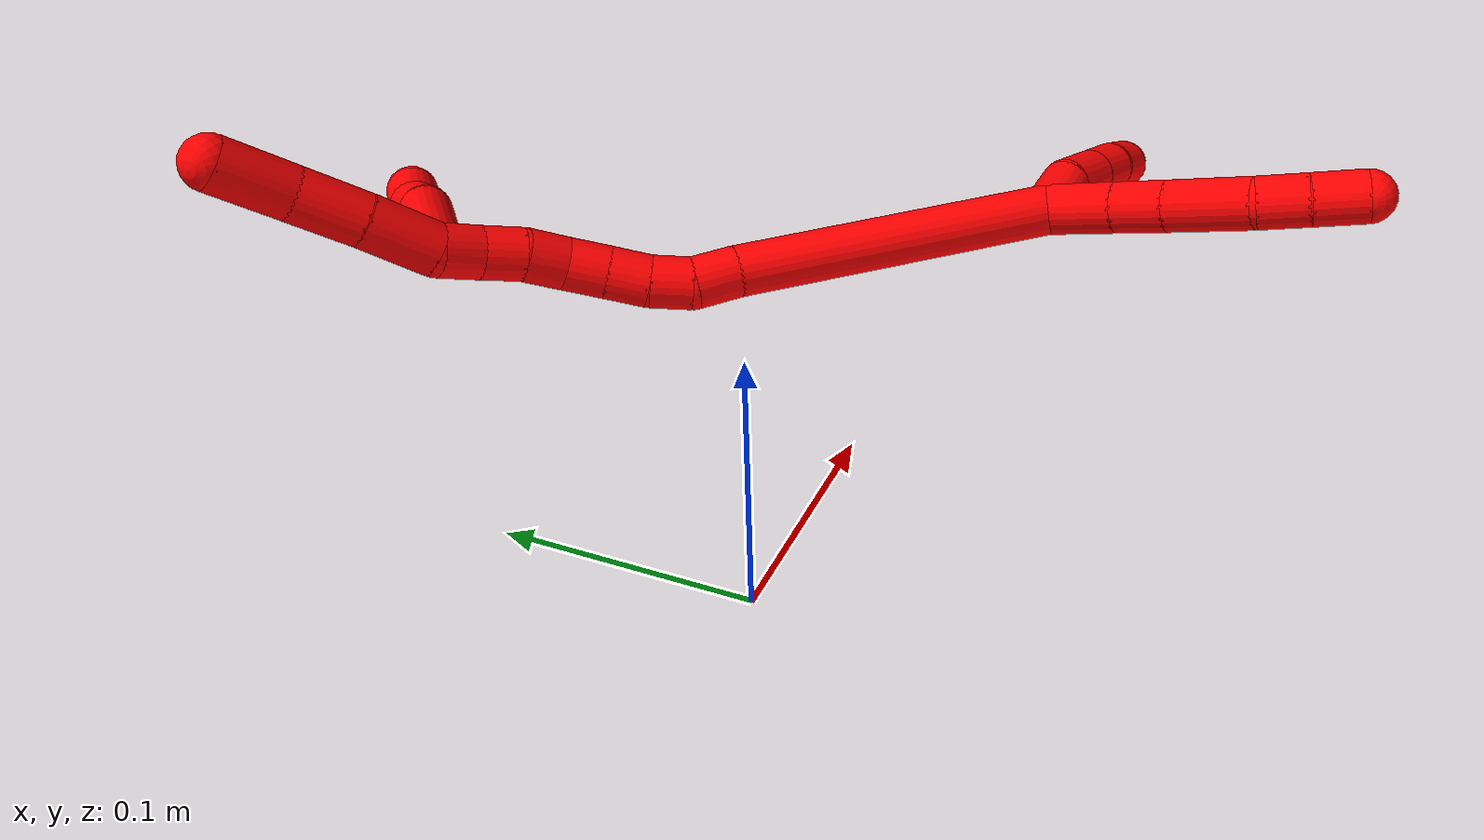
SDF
<sdf version="1.7">
 <world name="default">
  <model name="2">
   <static>0</static>
   <link name="2">
    <collision name="collision-cylinder-e_1_2_8">
     <pose>0.006034 -0.016121 -0.002976 1.75336 0.352666 0.421816</pose>
     <geometry><cylinder><radius>0.0125</radius><length>0.034937</length></cylinder></geometry>
     <surface>
      <friction><ode><mu>1.16</mu><mu2>1.16</mu2><slip1>0</slip1><slip2>0</slip2></ode></friction>
      <contact><ode><kp>1e+06</kp><kd>1</kd><max_vel>0</max_vel><min_depth>0.001</min_depth></ode></contact>
     </surface>
    </collision>
    <visual name="visual-cylinder-e_1_2_8">
     <pose>0.006034 -0.016121 -0.002976 1.75336 0.352666 0.421816</pose>
     <geometry><cylinder><radius>0.0125</radius><length>0.034937</length></cylinder></geometry>
     <material><ambient>1 0 0 1</ambient></material>
    </visual>
    <collision name="collision-cylinder-e_2_8_9">
     <pose>0.016473 -0.043834 -0.008078 1.75215 0.357719 0.427292</pose>
     <geometry><cylinder><radius>0.0125</radius><length>0.025163</length></cylinder></geometry>
     <surface>
      <friction><ode><mu>1.16</mu><mu2>1.16</mu2><slip1>0</slip1><slip2>0</slip2></ode></friction>
      <contact><ode><kp>1e+06</kp><kd>1</kd><max_vel>0</max_vel><min_depth>0.001</min_depth></ode></contact>
     </surface>
    </collision>
    <visual name="visual-cylinder-e_2_8_9">
     <pose>0.016473 -0.043834 -0.008078 1.75215 0.357719 0.427292</pose>
     <geometry><cylinder><radius>0.0125</radius><length>0.025163</length></cylinder></geometry>
     <material><ambient>1 0 0 1</ambient></material>
    </visual>
    <collision name="collision-cylinder-e_3_9_10">
     <pose>0.027869 -0.074534 -0.01392 1.76288 0.344813 0.416405</pose>
     <geometry><cylinder><radius>0.0125</radius><length>0.041366</length></cylinder></geometry>
     <surface>
      <friction><ode><mu>1.16</mu><mu2>1.16</mu2><slip1>0</slip1><slip2>0</slip2></ode></friction>
      <contact><ode><kp>1e+06</kp><kd>1</kd><max_vel>0</max_vel><min_depth>0.001</min_depth></ode></contact>
     </surface>
    </collision>
    <visual name="visual-cylinder-e_3_9_10">
     <pose>0.027869 -0.074534 -0.01392 1.76288 0.344813 0.416405</pose>
     <geometry><cylinder><radius>0.0125</radius><length>0.041366</length></cylinder></geometry>
     <material><ambient>1 0 0 1</ambient></material>
    </visual>
    <collision name="collision-cylinder-e_4_10_11">
     <pose>0.03934 -0.104548 -0.016894 1.50285 0.38886 0.363877</pose>
     <geometry><cylinder><radius>0.0125</radius><length>0.023628</length></cylinder></geometry>
     <surface>
      <friction><ode><mu>1.16</mu><mu2>1.16</mu2><slip1>0</slip1><slip2>0</slip2></ode></friction>
      <contact><ode><kp>1e+06</kp><kd>1</kd><max_vel>0</max_vel><min_depth>0.001</min_depth></ode></contact>
     </surface>
    </collision>
    <visual name="visual-cylinder-e_4_10_11">
     <pose>0.03934 -0.104548 -0.016894 1.50285 0.38886 0.363877</pose>
     <geometry><cylinder><radius>0.0125</radius><length>0.023628</length></cylinder></geometry>
     <material><ambient>1 0 0 1</ambient></material>
    </visual>
    <collision name="collision-cylinder-e_5_11_6">
     <pose>0.048658 -0.126818 -0.014557 1.43137 0.399106 0.348129</pose>
     <geometry><cylinder><radius>0.0125</radius><length>0.024905</length></cylinder></geometry>
     <surface>
      <friction><ode><mu>1.16</mu><mu2>1.16</mu2><slip1>0</slip1><slip2>0</slip2></ode></friction>
      <contact><ode><kp>1e+06</kp><kd>1</kd><max_vel>0</max_vel><min_depth>0.001</min_depth></ode></contact>
     </surface>
    </collision>
    <visual name="visual-cylinder-e_5_11_6">
     <pose>0.048658 -0.126818 -0.014557 1.43137 0.399106 0.348129</pose>
     <geometry><cylinder><radius>0.0125</radius><length>0.024905</length></cylinder></geometry>
     <material><ambient>1 0 0 1</ambient></material>
    </visual>
    <collision name="collision-cylinder-e_1_2_12">
     <pose>-0.002024 -0.002992 0.013701 0.214989 -0.143334 -0.015493</pose>
     <geometry><cylinder><radius>0.0125</radius><length>0.028339</length></cylinder></geometry>
     <surface>
      <friction><ode><mu>1.16</mu><mu2>1.16</mu2><slip1>0</slip1><slip2>0</slip2></ode></friction>
      <contact><ode><kp>1e+06</kp><kd>1</kd><max_vel>0</max_vel><min_depth>0.001</min_depth></ode></contact>
     </surface>
    </collision>
    <visual name="visual-cylinder-e_1_2_12">
     <pose>-0.002024 -0.002992 0.013701 0.214989 -0.143334 -0.015493</pose>
     <geometry><cylinder><radius>0.0125</radius><length>0.028339</length></cylinder></geometry>
     <material><ambient>1 0 0 1</ambient></material>
    </visual>
    <collision name="collision-cylinder-e_2_12_13">
     <pose>-0.001557 -0.009107 0.041263 0.221607 0.173596 0.019362</pose>
     <geometry><cylinder><radius>0.0125</radius><length>0.028849</length></cylinder></geometry>
     <surface>
      <friction><ode><mu>1.16</mu><mu2>1.16</mu2><slip1>0</slip1><slip2>0</slip2></ode></friction>
      <contact><ode><kp>1e+06</kp><kd>1</kd><max_vel>0</max_vel><min_depth>0.001</min_depth></ode></contact>
     </surface>
    </collision>
    <visual name="visual-cylinder-e_2_12_13">
     <pose>-0.001557 -0.009107 0.041263 0.221607 0.173596 0.019362</pose>
     <geometry><cylinder><radius>0.0125</radius><length>0.028849</length></cylinder></geometry>
     <material><ambient>1 0 0 1</ambient></material>
    </visual>
    <collision name="collision-cylinder-e_3_13_14">
     <pose>0.002838 -0.014872 0.065642 0.246103 0.173687 0.021534</pose>
     <geometry><cylinder><radius>0.0125</radius><length>0.022023</length></cylinder></geometry>
     <surface>
      <friction><ode><mu>1.16</mu><mu2>1.16</mu2><slip1>0</slip1><slip2>0</slip2></ode></friction>
      <contact><ode><kp>1e+06</kp><kd>1</kd><max_vel>0</max_vel><min_depth>0.001</min_depth></ode></contact>
     </surface>
    </collision>
    <visual name="visual-cylinder-e_3_13_14">
     <pose>0.002838 -0.014872 0.065642 0.246103 0.173687 0.021534</pose>
     <geometry><cylinder><radius>0.0125</radius><length>0.022023</length></cylinder></geometry>
     <material><ambient>1 0 0 1</ambient></material>
    </visual>
    <collision name="collision-cylinder-e_4_14_5">
     <pose>0.00714 -0.018378 0.086238 0.085555 0.232959 0.010017</pose>
     <geometry><cylinder><radius>0.0125</radius><length>0.020789</length></cylinder></geometry>
     <surface>
      <friction><ode><mu>1.16</mu><mu2>1.16</mu2><slip1>0</slip1><slip2>0</slip2></ode></friction>
      <contact><ode><kp>1e+06</kp><kd>1</kd><max_vel>0</max_vel><min_depth>0.001</min_depth></ode></contact>
     </surface>
    </collision>
    <visual name="visual-cylinder-e_4_14_5">
     <pose>0.00714 -0.018378 0.086238 0.085555 0.232959 0.010017</pose>
     <geometry><cylinder><radius>0.0125</radius><length>0.020789</length></cylinder></geometry>
     <material><ambient>1 0 0 1</ambient></material>
    </visual>
    <collision name="collision-cylinder-e_1_2_15">
     <pose>-0.024726 0.060696 -0.043906 -2.19703 -0.318812 0.60981</pose>
     <geometry><cylinder><radius>0.0125</radius><length>0.157774</length></cylinder></geometry>
     <surface>
      <friction><ode><mu>1.16</mu><mu2>1.16</mu2><slip1>0</slip1><slip2>0</slip2></ode></friction>
      <contact><ode><kp>1e+06</kp><kd>1</kd><max_vel>0</max_vel><min_depth>0.001</min_depth></ode></contact>
     </surface>
    </collision>
    <visual name="visual-cylinder-e_1_2_15">
     <pose>-0.024726 0.060696 -0.043906 -2.19703 -0.318812 0.60981</pose>
     <geometry><cylinder><radius>0.0125</radius><length>0.157774</length></cylinder></geometry>
     <material><ambient>1 0 0 1</ambient></material>
    </visual>
    <collision name="collision-cylinder-e_2_15_16">
     <pose>-0.052208 0.129433 -0.09483 -2.2885 -0.252668 0.545057</pose>
     <geometry><cylinder><radius>0.0125</radius><length>0.022045</length></cylinder></geometry>
     <surface>
      <friction><ode><mu>1.16</mu><mu2>1.16</mu2><slip1>0</slip1><slip2>0</slip2></ode></friction>
      <contact><ode><kp>1e+06</kp><kd>1</kd><max_vel>0</max_vel><min_depth>0.001</min_depth></ode></contact>
     </surface>
    </collision>
    <visual name="visual-cylinder-e_2_15_16">
     <pose>-0.052208 0.129433 -0.09483 -2.2885 -0.252668 0.545057</pose>
     <geometry><cylinder><radius>0.0125</radius><length>0.022045</length></cylinder></geometry>
     <material><ambient>1 0 0 1</ambient></material>
    </visual>
    <collision name="collision-cylinder-e_3_16_17">
     <pose>-0.060351 0.144732 -0.106312 -2.12199 -0.563766 0.955832</pose>
     <geometry><cylinder><radius>0.0125</radius><length>0.020164</length></cylinder></geometry>
     <surface>
      <friction><ode><mu>1.16</mu><mu2>1.16</mu2><slip1>0</slip1><slip2>0</slip2></ode></friction>
      <contact><ode><kp>1e+06</kp><kd>1</kd><max_vel>0</max_vel><min_depth>0.001</min_depth></ode></contact>
     </surface>
    </collision>
    <visual name="visual-cylinder-e_3_16_17">
     <pose>-0.060351 0.144732 -0.106312 -2.12199 -0.563766 0.955832</pose>
     <geometry><cylinder><radius>0.0125</radius><length>0.020164</length></cylinder></geometry>
     <material><ambient>1 0 0 1</ambient></material>
    </visual>
    <collision name="collision-cylinder-e_4_17_18">
     <pose>-0.07238 0.158332 -0.114753 -2.13121 -0.725702 1.20317</pose>
     <geometry><cylinder><radius>0.0125</radius><length>0.020014</length></cylinder></geometry>
     <surface>
      <friction><ode><mu>1.16</mu><mu2>1.16</mu2><slip1>0</slip1><slip2>0</slip2></ode></friction>
      <contact><ode><kp>1e+06</kp><kd>1</kd><max_vel>0</max_vel><min_depth>0.001</min_depth></ode></contact>
     </surface>
    </collision>
    <visual name="visual-cylinder-e_4_17_18">
     <pose>-0.07238 0.158332 -0.114753 -2.13121 -0.725702 1.20317</pose>
     <geometry><cylinder><radius>0.0125</radius><length>0.020014</length></cylinder></geometry>
     <material><ambient>1 0 0 1</ambient></material>
    </visual>
    <collision name="collision-cylinder-e_5_18_19">
     <pose>-0.085602 0.170714 -0.123228 -2.21052 -0.718204 1.28344</pose>
     <geometry><cylinder><radius>0.0125</radius><length>0.020001</length></cylinder></geometry>
     <surface>
      <friction><ode><mu>1.16</mu><mu2>1.16</mu2><slip1>0</slip1><slip2>0</slip2></ode></friction>
      <contact><ode><kp>1e+06</kp><kd>1</kd><max_vel>0</max_vel><min_depth>0.001</min_depth></ode></contact>
     </surface>
    </collision>
    <visual name="visual-cylinder-e_5_18_19">
     <pose>-0.085602 0.170714 -0.123228 -2.21052 -0.718204 1.28344</pose>
     <geometry><cylinder><radius>0.0125</radius><length>0.020001</length></cylinder></geometry>
     <material><ambient>1 0 0 1</ambient></material>
    </visual>
    <collision name="collision-cylinder-e_6_19_20">
     <pose>-0.0986 0.180905 -0.134173 -2.56994 -0.696758 1.78101</pose>
     <geometry><cylinder><radius>0.0125</radius><length>0.02</length></cylinder></geometry>
     <surface>
      <friction><ode><mu>1.16</mu><mu2>1.16</mu2><slip1>0</slip1><slip2>0</slip2></ode></friction>
      <contact><ode><kp>1e+06</kp><kd>1</kd><max_vel>0</max_vel><min_depth>0.001</min_depth></ode></contact>
     </surface>
    </collision>
    <visual name="visual-cylinder-e_6_19_20">
     <pose>-0.0986 0.180905 -0.134173 -2.56994 -0.696758 1.78101</pose>
     <geometry><cylinder><radius>0.0125</radius><length>0.02</length></cylinder></geometry>
     <material><ambient>1 0 0 1</ambient></material>
    </visual>
    <collision name="collision-cylinder-e_7_20_21">
     <pose>-0.11015 0.190473 -0.147279 -2.45826 -0.538957 1.32072</pose>
     <geometry><cylinder><radius>0.0125</radius><length>0.020001</length></cylinder></geometry>
     <surface>
      <friction><ode><mu>1.16</mu><mu2>1.16</mu2><slip1>0</slip1><slip2>0</slip2></ode></friction>
      <contact><ode><kp>1e+06</kp><kd>1</kd><max_vel>0</max_vel><min_depth>0.001</min_depth></ode></contact>
     </surface>
    </collision>
    <visual name="visual-cylinder-e_7_20_21">
     <pose>-0.11015 0.190473 -0.147279 -2.45826 -0.538957 1.32072</pose>
     <geometry><cylinder><radius>0.0125</radius><length>0.020001</length></cylinder></geometry>
     <material><ambient>1 0 0 1</ambient></material>
    </visual>
    <collision name="collision-cylinder-e_8_21_1">
     <pose>-0.120194 0.199597 -0.161819 -2.70235 -0.51332 1.73198</pose>
     <geometry><cylinder><radius>0.0125</radius><length>0.02</length></cylinder></geometry>
     <surface>
      <friction><ode><mu>1.16</mu><mu2>1.16</mu2><slip1>0</slip1><slip2>0</slip2></ode></friction>
      <contact><ode><kp>1e+06</kp><kd>1</kd><max_vel>0</max_vel><min_depth>0.001</min_depth></ode></contact>
     </surface>
    </collision>
    <visual name="visual-cylinder-e_8_21_1">
     <pose>-0.120194 0.199597 -0.161819 -2.70235 -0.51332 1.73198</pose>
     <geometry><cylinder><radius>0.0125</radius><length>0.02</length></cylinder></geometry>
     <material><ambient>1 0 0 1</ambient></material>
    </visual>
    <collision name="collision-cylinder-e_1_1_22">
     <pose>-0.1379 0.208085 -0.179633 -2.69262 -0.859725 2.21741</pose>
     <geometry><cylinder><radius>0.0125</radius><length>0.033775</length></cylinder></geometry>
     <surface>
      <friction><ode><mu>1.16</mu><mu2>1.16</mu2><slip1>0</slip1><slip2>0</slip2></ode></friction>
      <contact><ode><kp>1e+06</kp><kd>1</kd><max_vel>0</max_vel><min_depth>0.001</min_depth></ode></contact>
     </surface>
    </collision>
    <visual name="visual-cylinder-e_1_1_22">
     <pose>-0.1379 0.208085 -0.179633 -2.69262 -0.859725 2.21741</pose>
     <geometry><cylinder><radius>0.0125</radius><length>0.033775</length></cylinder></geometry>
     <material><ambient>1 0 0 1</ambient></material>
    </visual>
    <collision name="collision-cylinder-e_2_22_23">
     <pose>-0.162441 0.218218 -0.19862 -2.60816 -0.840439 2.04397</pose>
     <geometry><cylinder><radius>0.0125</radius><length>0.031535</length></cylinder></geometry>
     <surface>
      <friction><ode><mu>1.16</mu><mu2>1.16</mu2><slip1>0</slip1><slip2>0</slip2></ode></friction>
      <contact><ode><kp>1e+06</kp><kd>1</kd><max_vel>0</max_vel><min_depth>0.001</min_depth></ode></contact>
     </surface>
    </collision>
    <visual name="visual-cylinder-e_2_22_23">
     <pose>-0.162441 0.218218 -0.19862 -2.60816 -0.840439 2.04397</pose>
     <geometry><cylinder><radius>0.0125</radius><length>0.031535</length></cylinder></geometry>
     <material><ambient>1 0 0 1</ambient></material>
    </visual>
    <collision name="collision-cylinder-e_3_23_4">
     <pose>-0.186502 0.227691 -0.219173 -2.79716 -0.789593 2.35068</pose>
     <geometry><cylinder><radius>0.0125</radius><length>0.03469</length></cylinder></geometry>
     <surface>
      <friction><ode><mu>1.16</mu><mu2>1.16</mu2><slip1>0</slip1><slip2>0</slip2></ode></friction>
      <contact><ode><kp>1e+06</kp><kd>1</kd><max_vel>0</max_vel><min_depth>0.001</min_depth></ode></contact>
     </surface>
    </collision>
    <visual name="visual-cylinder-e_3_23_4">
     <pose>-0.186502 0.227691 -0.219173 -2.79716 -0.789593 2.35068</pose>
     <geometry><cylinder><radius>0.0125</radius><length>0.03469</length></cylinder></geometry>
     <material><ambient>1 0 0 1</ambient></material>
    </visual>
    <collision name="collision-cylinder-e_1_1_24">
     <pose>-0.135119 0.217854 -0.147626 -0.582781 -0.362023 0.109672</pose>
     <geometry><cylinder><radius>0.0125</radius><length>0.05655</length></cylinder></geometry>
     <surface>
      <friction><ode><mu>1.16</mu><mu2>1.16</mu2><slip1>0</slip1><slip2>0</slip2></ode></friction>
      <contact><ode><kp>1e+06</kp><kd>1</kd><max_vel>0</max_vel><min_depth>0.001</min_depth></ode></contact>
     </surface>
    </collision>
    <visual name="visual-cylinder-e_1_1_24">
     <pose>-0.135119 0.217854 -0.147626 -0.582781 -0.362023 0.109672</pose>
     <geometry><cylinder><radius>0.0125</radius><length>0.05655</length></cylinder></geometry>
     <material><ambient>1 0 0 1</ambient></material>
    </visual>
    <collision name="collision-cylinder-e_2_24_25">
     <pose>-0.147893 0.240579 -0.117803 -0.812205 -0.240387 0.103775</pose>
     <geometry><cylinder><radius>0.0125</radius><length>0.023186</length></cylinder></geometry>
     <surface>
      <friction><ode><mu>1.16</mu><mu2>1.16</mu2><slip1>0</slip1><slip2>0</slip2></ode></friction>
      <contact><ode><kp>1e+06</kp><kd>1</kd><max_vel>0</max_vel><min_depth>0.001</min_depth></ode></contact>
     </surface>
    </collision>
    <visual name="visual-cylinder-e_2_24_25">
     <pose>-0.147893 0.240579 -0.117803 -0.812205 -0.240387 0.103775</pose>
     <geometry><cylinder><radius>0.0125</radius><length>0.023186</length></cylinder></geometry>
     <material><ambient>1 0 0 1</ambient></material>
    </visual>
    <collision name="collision-cylinder-e_3_25_3">
     <pose>-0.154801 0.253508 -0.102132 -0.540584 -0.421795 0.118493</pose>
     <geometry><cylinder><radius>0.0125</radius><length>0.020264</length></cylinder></geometry>
     <surface>
      <friction><ode><mu>1.16</mu><mu2>1.16</mu2><slip1>0</slip1><slip2>0</slip2></ode></friction>
      <contact><ode><kp>1e+06</kp><kd>1</kd><max_vel>0</max_vel><min_depth>0.001</min_depth></ode></contact>
     </surface>
    </collision>
    <visual name="visual-cylinder-e_3_25_3">
     <pose>-0.154801 0.253508 -0.102132 -0.540584 -0.421795 0.118493</pose>
     <geometry><cylinder><radius>0.0125</radius><length>0.020264</length></cylinder></geometry>
     <material><ambient>1 0 0 1</ambient></material>
    </visual>
    <collision name="collision-sphere-3">
     <pose>-0.158949 0.258266 -0.094206 0 -0 0</pose>
     <geometry><sphere><radius>0.0125</radius></sphere></geometry>
     <surface>
      <friction><ode><mu>1.16</mu><mu2>1.16</mu2><slip1>0</slip1><slip2>0</slip2></ode></friction>
      <contact><ode><kp>1e+06</kp><kd>1</kd><max_vel>0</max_vel><min_depth>0.001</min_depth></ode></contact>
     </surface>
    </collision>
    <visual name="visual-sphere-3">
     <pose>-0.158949 0.258266 -0.094206 0 -0 0</pose>
     <geometry><sphere><radius>0.0125</radius></sphere></geometry>
     <material><ambient>1 0 0 1</ambient></material>
    </visual>
    <collision name="collision-sphere-25">
     <pose>-0.150653 0.248751 -0.110058 0 -0 0</pose>
     <geometry><sphere><radius>0.0125</radius></sphere></geometry>
     <surface>
      <friction><ode><mu>1.16</mu><mu2>1.16</mu2><slip1>0</slip1><slip2>0</slip2></ode></friction>
      <contact><ode><kp>1e+06</kp><kd>1</kd><max_vel>0</max_vel><min_depth>0.001</min_depth></ode></contact>
     </surface>
    </collision>
    <visual name="visual-sphere-25">
     <pose>-0.150653 0.248751 -0.110058 0 -0 0</pose>
     <geometry><sphere><radius>0.0125</radius></sphere></geometry>
     <material><ambient>1 0 0 1</ambient></material>
    </visual>
    <collision name="collision-sphere-24">
     <pose>-0.145133 0.232406 -0.125549 0 -0 0</pose>
     <geometry><sphere><radius>0.0125</radius></sphere></geometry>
     <surface>
      <friction><ode><mu>1.16</mu><mu2>1.16</mu2><slip1>0</slip1><slip2>0</slip2></ode></friction>
      <contact><ode><kp>1e+06</kp><kd>1</kd><max_vel>0</max_vel><min_depth>0.001</min_depth></ode></contact>
     </surface>
    </collision>
    <visual name="visual-sphere-24">
     <pose>-0.145133 0.232406 -0.125549 0 -0 0</pose>
     <geometry><sphere><radius>0.0125</radius></sphere></geometry>
     <material><ambient>1 0 0 1</ambient></material>
    </visual>
    <collision name="collision-sphere-4">
     <pose>-0.198818 0.231815 -0.230669 0 -0 0</pose>
     <geometry><sphere><radius>0.0125</radius></sphere></geometry>
     <surface>
      <friction><ode><mu>1.16</mu><mu2>1.16</mu2><slip1>0</slip1><slip2>0</slip2></ode></friction>
      <contact><ode><kp>1e+06</kp><kd>1</kd><max_vel>0</max_vel><min_depth>0.001</min_depth></ode></contact>
     </surface>
    </collision>
    <visual name="visual-sphere-4">
     <pose>-0.198818 0.231815 -0.230669 0 -0 0</pose>
     <geometry><sphere><radius>0.0125</radius></sphere></geometry>
     <material><ambient>1 0 0 1</ambient></material>
    </visual>
    <collision name="collision-sphere-23">
     <pose>-0.174186 0.223567 -0.207678 0 -0 0</pose>
     <geometry><sphere><radius>0.0125</radius></sphere></geometry>
     <surface>
      <friction><ode><mu>1.16</mu><mu2>1.16</mu2><slip1>0</slip1><slip2>0</slip2></ode></friction>
      <contact><ode><kp>1e+06</kp><kd>1</kd><max_vel>0</max_vel><min_depth>0.001</min_depth></ode></contact>
     </surface>
    </collision>
    <visual name="visual-sphere-23">
     <pose>-0.174186 0.223567 -0.207678 0 -0 0</pose>
     <geometry><sphere><radius>0.0125</radius></sphere></geometry>
     <material><ambient>1 0 0 1</ambient></material>
    </visual>
    <collision name="collision-sphere-22">
     <pose>-0.150695 0.212869 -0.189563 0 -0 0</pose>
     <geometry><sphere><radius>0.0125</radius></sphere></geometry>
     <surface>
      <friction><ode><mu>1.16</mu><mu2>1.16</mu2><slip1>0</slip1><slip2>0</slip2></ode></friction>
      <contact><ode><kp>1e+06</kp><kd>1</kd><max_vel>0</max_vel><min_depth>0.001</min_depth></ode></contact>
     </surface>
    </collision>
    <visual name="visual-sphere-22">
     <pose>-0.150695 0.212869 -0.189563 0 -0 0</pose>
     <geometry><sphere><radius>0.0125</radius></sphere></geometry>
     <material><ambient>1 0 0 1</ambient></material>
    </visual>
    <collision name="collision-sphere-1">
     <pose>-0.125105 0.203302 -0.169704 0 -0 0</pose>
     <geometry><sphere><radius>0.0125</radius></sphere></geometry>
     <surface>
      <friction><ode><mu>1.16</mu><mu2>1.16</mu2><slip1>0</slip1><slip2>0</slip2></ode></friction>
      <contact><ode><kp>1e+06</kp><kd>1</kd><max_vel>0</max_vel><min_depth>0.001</min_depth></ode></contact>
     </surface>
    </collision>
    <visual name="visual-sphere-1">
     <pose>-0.125105 0.203302 -0.169704 0 -0 0</pose>
     <geometry><sphere><radius>0.0125</radius></sphere></geometry>
     <material><ambient>1 0 0 1</ambient></material>
    </visual>
    <collision name="collision-sphere-21">
     <pose>-0.115283 0.195892 -0.153935 0 -0 0</pose>
     <geometry><sphere><radius>0.0125</radius></sphere></geometry>
     <surface>
      <friction><ode><mu>1.16</mu><mu2>1.16</mu2><slip1>0</slip1><slip2>0</slip2></ode></friction>
      <contact><ode><kp>1e+06</kp><kd>1</kd><max_vel>0</max_vel><min_depth>0.001</min_depth></ode></contact>
     </surface>
    </collision>
    <visual name="visual-sphere-21">
     <pose>-0.115283 0.195892 -0.153935 0 -0 0</pose>
     <geometry><sphere><radius>0.0125</radius></sphere></geometry>
     <material><ambient>1 0 0 1</ambient></material>
    </visual>
    <collision name="collision-sphere-6">
     <pose>0.053497 -0.13818 -0.012963 0 -0 0</pose>
     <geometry><sphere><radius>0.0125</radius></sphere></geometry>
     <surface>
      <friction><ode><mu>1.16</mu><mu2>1.16</mu2><slip1>0</slip1><slip2>0</slip2></ode></friction>
      <contact><ode><kp>1e+06</kp><kd>1</kd><max_vel>0</max_vel><min_depth>0.001</min_depth></ode></contact>
     </surface>
    </collision>
    <visual name="visual-sphere-6">
     <pose>0.053497 -0.13818 -0.012963 0 -0 0</pose>
     <geometry><sphere><radius>0.0125</radius></sphere></geometry>
     <material><ambient>1 0 0 1</ambient></material>
    </visual>
    <collision name="collision-sphere-11">
     <pose>0.043819 -0.115455 -0.016152 0 -0 0</pose>
     <geometry><sphere><radius>0.0125</radius></sphere></geometry>
     <surface>
      <friction><ode><mu>1.16</mu><mu2>1.16</mu2><slip1>0</slip1><slip2>0</slip2></ode></friction>
      <contact><ode><kp>1e+06</kp><kd>1</kd><max_vel>0</max_vel><min_depth>0.001</min_depth></ode></contact>
     </surface>
    </collision>
    <visual name="visual-sphere-11">
     <pose>0.043819 -0.115455 -0.016152 0 -0 0</pose>
     <geometry><sphere><radius>0.0125</radius></sphere></geometry>
     <material><ambient>1 0 0 1</ambient></material>
    </visual>
    <collision name="collision-sphere-10">
     <pose>0.034861 -0.093642 -0.017636 0 -0 0</pose>
     <geometry><sphere><radius>0.0125</radius></sphere></geometry>
     <surface>
      <friction><ode><mu>1.16</mu><mu2>1.16</mu2><slip1>0</slip1><slip2>0</slip2></ode></friction>
      <contact><ode><kp>1e+06</kp><kd>1</kd><max_vel>0</max_vel><min_depth>0.001</min_depth></ode></contact>
     </surface>
    </collision>
    <visual name="visual-sphere-10">
     <pose>0.034861 -0.093642 -0.017636 0 -0 0</pose>
     <geometry><sphere><radius>0.0125</radius></sphere></geometry>
     <material><ambient>1 0 0 1</ambient></material>
    </visual>
    <collision name="collision-sphere-9">
     <pose>0.020878 -0.055426 -0.010204 0 -0 0</pose>
     <geometry><sphere><radius>0.0125</radius></sphere></geometry>
     <surface>
      <friction><ode><mu>1.16</mu><mu2>1.16</mu2><slip1>0</slip1><slip2>0</slip2></ode></friction>
      <contact><ode><kp>1e+06</kp><kd>1</kd><max_vel>0</max_vel><min_depth>0.001</min_depth></ode></contact>
     </surface>
    </collision>
    <visual name="visual-sphere-9">
     <pose>0.020878 -0.055426 -0.010204 0 -0 0</pose>
     <geometry><sphere><radius>0.0125</radius></sphere></geometry>
     <material><ambient>1 0 0 1</ambient></material>
    </visual>
    <collision name="collision-sphere-2">
     <geometry><sphere><radius>0.0125</radius></sphere></geometry>
     <surface>
      <friction><ode><mu>1.16</mu><mu2>1.16</mu2><slip1>0</slip1><slip2>0</slip2></ode></friction>
      <contact><ode><kp>1e+06</kp><kd>1</kd><max_vel>0</max_vel><min_depth>0.001</min_depth></ode></contact>
     </surface>
    </collision>
    <visual name="visual-sphere-2">
     <geometry><sphere><radius>0.0125</radius></sphere></geometry>
     <material><ambient>1 0 0 1</ambient></material>
    </visual>
    <collision name="collision-sphere-19">
     <pose>-0.092183 0.176755 -0.127723 0 -0 0</pose>
     <geometry><sphere><radius>0.0125</radius></sphere></geometry>
     <surface>
      <friction><ode><mu>1.16</mu><mu2>1.16</mu2><slip1>0</slip1><slip2>0</slip2></ode></friction>
      <contact><ode><kp>1e+06</kp><kd>1</kd><max_vel>0</max_vel><min_depth>0.001</min_depth></ode></contact>
     </surface>
    </collision>
    <visual name="visual-sphere-19">
     <pose>-0.092183 0.176755 -0.127723 0 -0 0</pose>
     <geometry><sphere><radius>0.0125</radius></sphere></geometry>
     <material><ambient>1 0 0 1</ambient></material>
    </visual>
    <collision name="collision-sphere-8">
     <pose>0.012067 -0.032242 -0.005953 0 -0 0</pose>
     <geometry><sphere><radius>0.0125</radius></sphere></geometry>
     <surface>
      <friction><ode><mu>1.16</mu><mu2>1.16</mu2><slip1>0</slip1><slip2>0</slip2></ode></friction>
      <contact><ode><kp>1e+06</kp><kd>1</kd><max_vel>0</max_vel><min_depth>0.001</min_depth></ode></contact>
     </surface>
    </collision>
    <visual name="visual-sphere-8">
     <pose>0.012067 -0.032242 -0.005953 0 -0 0</pose>
     <geometry><sphere><radius>0.0125</radius></sphere></geometry>
     <material><ambient>1 0 0 1</ambient></material>
    </visual>
    <collision name="collision-sphere-12">
     <pose>-0.004048 -0.005984 0.027403 0 -0 0</pose>
     <geometry><sphere><radius>0.0125</radius></sphere></geometry>
     <surface>
      <friction><ode><mu>1.16</mu><mu2>1.16</mu2><slip1>0</slip1><slip2>0</slip2></ode></friction>
      <contact><ode><kp>1e+06</kp><kd>1</kd><max_vel>0</max_vel><min_depth>0.001</min_depth></ode></contact>
     </surface>
    </collision>
    <visual name="visual-sphere-12">
     <pose>-0.004048 -0.005984 0.027403 0 -0 0</pose>
     <geometry><sphere><radius>0.0125</radius></sphere></geometry>
     <material><ambient>1 0 0 1</ambient></material>
    </visual>
    <collision name="collision-sphere-13">
     <pose>0.000935 -0.012229 0.055123 0 -0 0</pose>
     <geometry><sphere><radius>0.0125</radius></sphere></geometry>
     <surface>
      <friction><ode><mu>1.16</mu><mu2>1.16</mu2><slip1>0</slip1><slip2>0</slip2></ode></friction>
      <contact><ode><kp>1e+06</kp><kd>1</kd><max_vel>0</max_vel><min_depth>0.001</min_depth></ode></contact>
     </surface>
    </collision>
    <visual name="visual-sphere-13">
     <pose>0.000935 -0.012229 0.055123 0 -0 0</pose>
     <geometry><sphere><radius>0.0125</radius></sphere></geometry>
     <material><ambient>1 0 0 1</ambient></material>
    </visual>
    <collision name="collision-sphere-14">
     <pose>0.004741 -0.017514 0.076161 0 -0 0</pose>
     <geometry><sphere><radius>0.0125</radius></sphere></geometry>
     <surface>
      <friction><ode><mu>1.16</mu><mu2>1.16</mu2><slip1>0</slip1><slip2>0</slip2></ode></friction>
      <contact><ode><kp>1e+06</kp><kd>1</kd><max_vel>0</max_vel><min_depth>0.001</min_depth></ode></contact>
     </surface>
    </collision>
    <visual name="visual-sphere-14">
     <pose>0.004741 -0.017514 0.076161 0 -0 0</pose>
     <geometry><sphere><radius>0.0125</radius></sphere></geometry>
     <material><ambient>1 0 0 1</ambient></material>
    </visual>
    <collision name="collision-sphere-5">
     <pose>0.00954 -0.019242 0.096315 0 -0 0</pose>
     <geometry><sphere><radius>0.0125</radius></sphere></geometry>
     <surface>
      <friction><ode><mu>1.16</mu><mu2>1.16</mu2><slip1>0</slip1><slip2>0</slip2></ode></friction>
      <contact><ode><kp>1e+06</kp><kd>1</kd><max_vel>0</max_vel><min_depth>0.001</min_depth></ode></contact>
     </surface>
    </collision>
    <visual name="visual-sphere-5">
     <pose>0.00954 -0.019242 0.096315 0 -0 0</pose>
     <geometry><sphere><radius>0.0125</radius></sphere></geometry>
     <material><ambient>1 0 0 1</ambient></material>
    </visual>
    <collision name="collision-sphere-15">
     <pose>-0.049453 0.121393 -0.087812 0 -0 0</pose>
     <geometry><sphere><radius>0.0125</radius></sphere></geometry>
     <surface>
      <friction><ode><mu>1.16</mu><mu2>1.16</mu2><slip1>0</slip1><slip2>0</slip2></ode></friction>
      <contact><ode><kp>1e+06</kp><kd>1</kd><max_vel>0</max_vel><min_depth>0.001</min_depth></ode></contact>
     </surface>
    </collision>
    <visual name="visual-sphere-15">
     <pose>-0.049453 0.121393 -0.087812 0 -0 0</pose>
     <geometry><sphere><radius>0.0125</radius></sphere></geometry>
     <material><ambient>1 0 0 1</ambient></material>
    </visual>
    <collision name="collision-sphere-16">
     <pose>-0.054963 0.137472 -0.101849 0 -0 0</pose>
     <geometry><sphere><radius>0.0125</radius></sphere></geometry>
     <surface>
      <friction><ode><mu>1.16</mu><mu2>1.16</mu2><slip1>0</slip1><slip2>0</slip2></ode></friction>
      <contact><ode><kp>1e+06</kp><kd>1</kd><max_vel>0</max_vel><min_depth>0.001</min_depth></ode></contact>
     </surface>
    </collision>
    <visual name="visual-sphere-16">
     <pose>-0.054963 0.137472 -0.101849 0 -0 0</pose>
     <geometry><sphere><radius>0.0125</radius></sphere></geometry>
     <material><ambient>1 0 0 1</ambient></material>
    </visual>
    <collision name="collision-sphere-17">
     <pose>-0.065738 0.151992 -0.110775 0 -0 0</pose>
     <geometry><sphere><radius>0.0125</radius></sphere></geometry>
     <surface>
      <friction><ode><mu>1.16</mu><mu2>1.16</mu2><slip1>0</slip1><slip2>0</slip2></ode></friction>
      <contact><ode><kp>1e+06</kp><kd>1</kd><max_vel>0</max_vel><min_depth>0.001</min_depth></ode></contact>
     </surface>
    </collision>
    <visual name="visual-sphere-17">
     <pose>-0.065738 0.151992 -0.110775 0 -0 0</pose>
     <geometry><sphere><radius>0.0125</radius></sphere></geometry>
     <material><ambient>1 0 0 1</ambient></material>
    </visual>
    <collision name="collision-sphere-18">
     <pose>-0.079021 0.164673 -0.118732 0 -0 0</pose>
     <geometry><sphere><radius>0.0125</radius></sphere></geometry>
     <surface>
      <friction><ode><mu>1.16</mu><mu2>1.16</mu2><slip1>0</slip1><slip2>0</slip2></ode></friction>
      <contact><ode><kp>1e+06</kp><kd>1</kd><max_vel>0</max_vel><min_depth>0.001</min_depth></ode></contact>
     </surface>
    </collision>
    <visual name="visual-sphere-18">
     <pose>-0.079021 0.164673 -0.118732 0 -0 0</pose>
     <geometry><sphere><radius>0.0125</radius></sphere></geometry>
     <material><ambient>1 0 0 1</ambient></material>
    </visual>
    <collision name="collision-sphere-20">
     <pose>-0.105017 0.185054 -0.140623 0 -0 0</pose>
     <geometry><sphere><radius>0.0125</radius></sphere></geometry>
     <surface>
      <friction><ode><mu>1.16</mu><mu2>1.16</mu2><slip1>0</slip1><slip2>0</slip2></ode></friction>
      <contact><ode><kp>1e+06</kp><kd>1</kd><max_vel>0</max_vel><min_depth>0.001</min_depth></ode></contact>
     </surface>
    </collision>
    <visual name="visual-sphere-20">
     <pose>-0.105017 0.185054 -0.140623 0 -0 0</pose>
     <geometry><sphere><radius>0.0125</radius></sphere></geometry>
     <material><ambient>1 0 0 1</ambient></material>
    </visual>
    <inertial>
     <pose>-0.056583 0.089012 -0.072932 0 -0 0</pose>
     <mass>0.75</mass>
     <inertia>
      <ixx>0.000494</ixx>
      <ixy>0</ixy>
      <ixz>0</ixz>
      <iyy>0.000143</iyy>
      <iyz>0</iyz>
      <izz>-0.000144</izz>
     </inertia>
    </inertial>
   </link>
   <pose>0.286976 -0.032782 0.025537 -1.87125 0.950833 -1.79273</pose>
  </model>
 </world>
</sdf>
